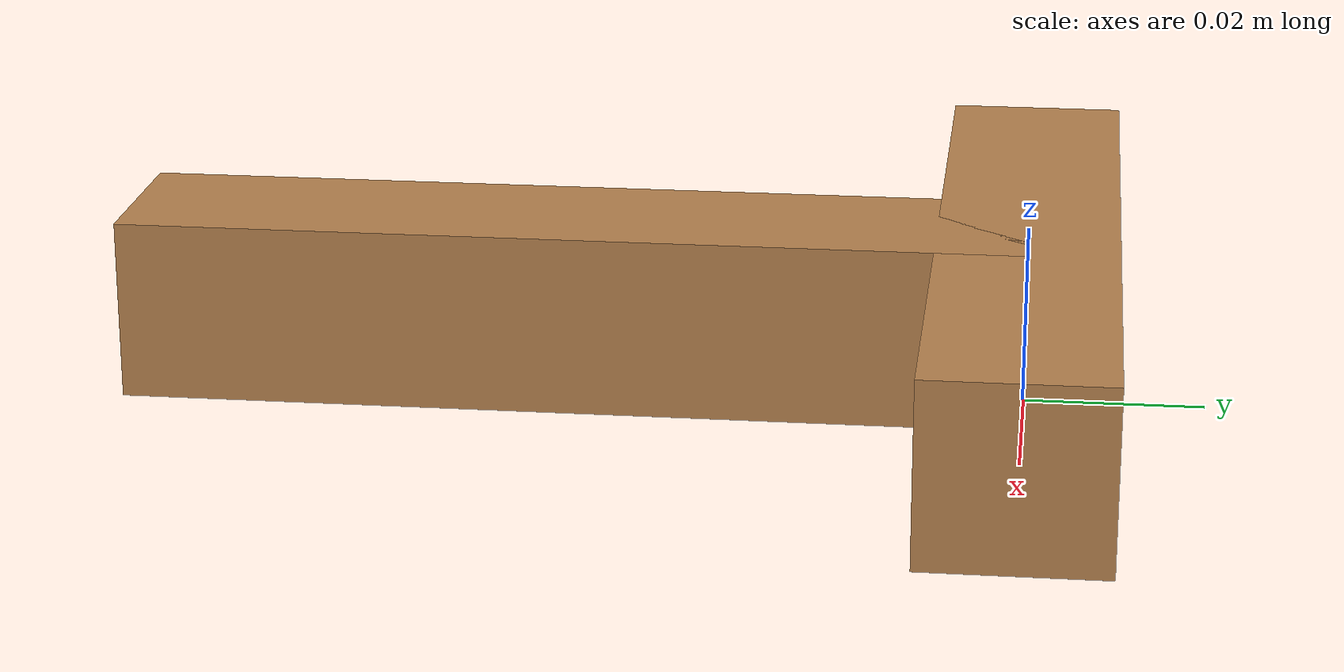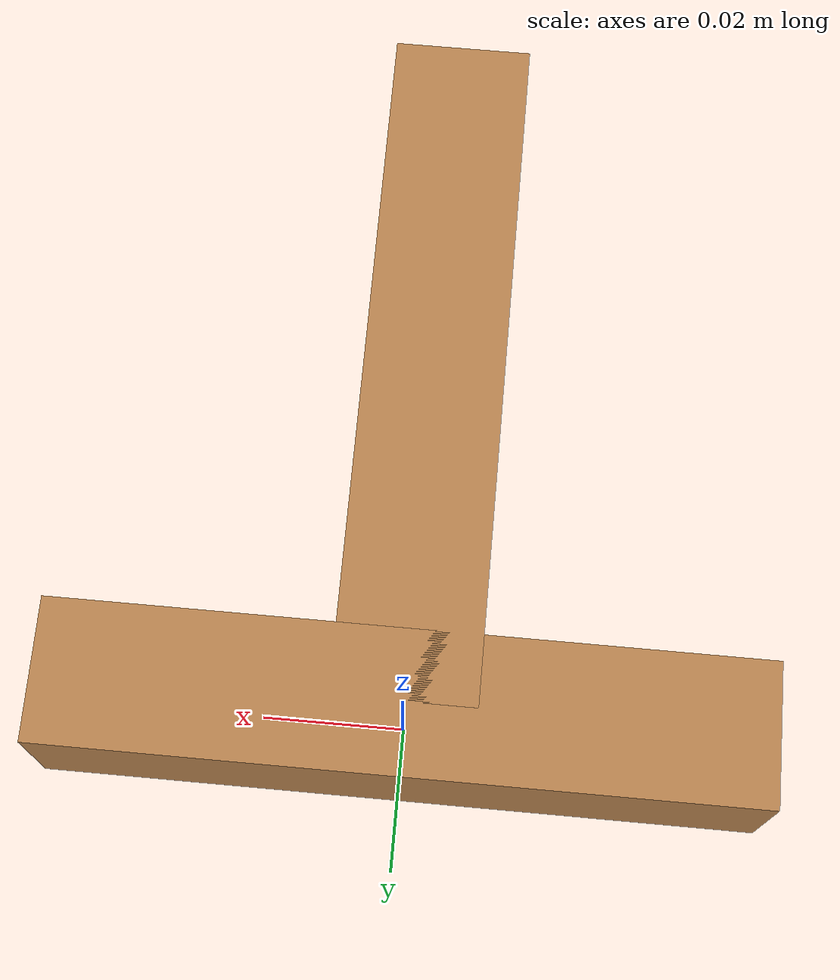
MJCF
<mujoco model="t_shape">
    <asset>
        <texture file="../textures/red-wood.png" type="cube" name="redwood"/>
        <material name="mat_redwood" texture="redwood" texrepeat="3 3" specular="0.4" shininess="0.1" />
    </asset>

    <worldbody>
        <body>
            <body name="object">
                <geom name="vertical_part" type="box" solimp="0.998 0.998 0.001" solref="0.001 1" density="100" friction="0.95 0.3 0.1" size="0.05 0.01 0.01" pos="0 0 0.01" material="mat_redwood" group="0" condim="4"/>
                <geom name="horizontal_part" type="box" solimp="0.998 0.998 0.001" solref="0.001 1" density="100" friction="0.95 0.3 0.1" size="0.01 0.05 0.01" pos="0 -0.05 0.01" material="mat_redwood" group="0" condim="4"/>
            </body>
            <site name="bottom_site" pos="0 -0.1 0.01" size="0.002" rgba="0 0 0 0"/>
            <site name="top_site" pos="0 0 0.02" size="0.002" rgba="0 0 0 0"/>
            <site name="left_site" pos="-0.05 0 0.01" size="0.002" rgba="0 0 0 0"/>
            <site name="right_site" pos="0.05 0 0.01" size="0.002" rgba="0 0 0 0"/>
            <site name="horizontal_radius_site" pos="0.025 0 0.01" size="0.002" rgba="0 0 0 0"/>

        </body>
    </worldbody>
</mujoco>
